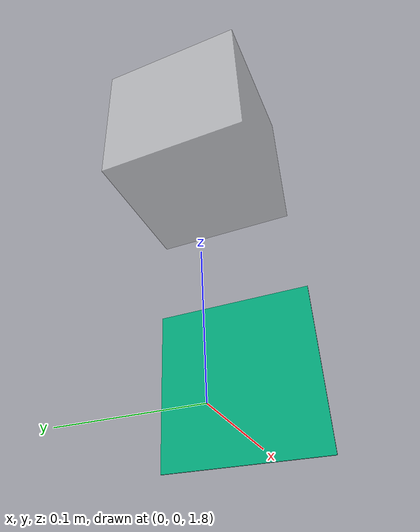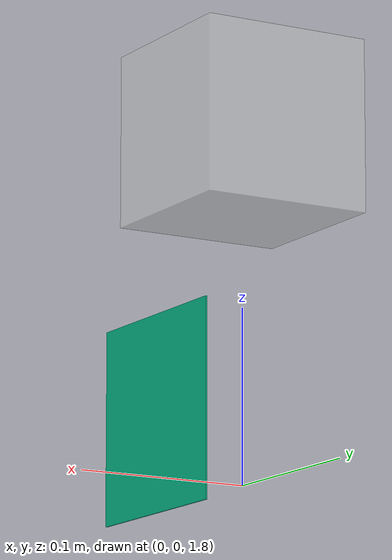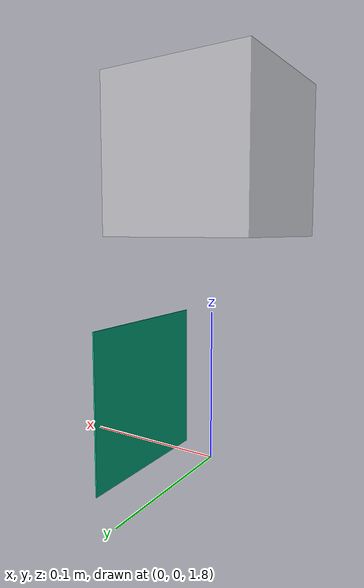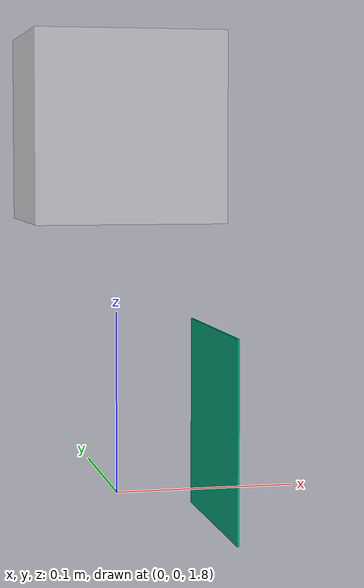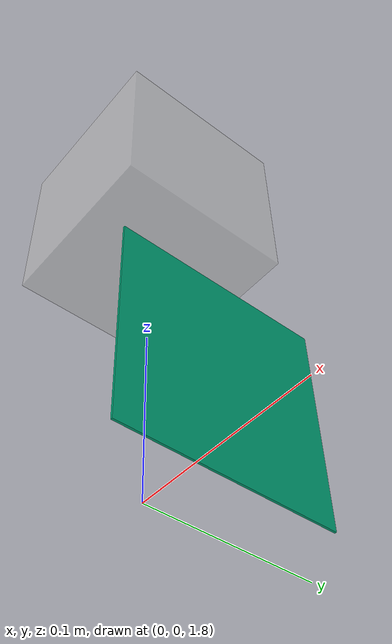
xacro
<?xml version="1.0"?>
<robot xmlns:xacro="http://ros.org/wiki/xacro" name="floating_apriltag_cube">

  <!-- 创建一个基础链接作为立方体的中心 -->
  <link name="world"/>

  <link name="apriltag_cube_base2">
    <visual>
      <geometry>
        <box size="0.1 0.1 0.1"/>
      </geometry>
      <material>
        <color rgba="0.8 0.8 0.8 0.5"/>
      </material>
    </visual>
    <collision>
      <geometry>
        <box size="0.1 0.1 0.1"/>
      </geometry>
    </collision>
    <inertial>
      <mass value="0.1"/>
      <inertia ixx="0.0001" ixy="0" ixz="0" iyy="0.0001" iyz="0" izz="0.0001"/>
    </inertial>
  </link>

  <!-- 使用 floating joint 使立方体可以自由移动 -->
  <joint name="world_to_cube_joint" type="floating">
    <parent link="world"/>
    <child link="apriltag_cube_base2"/>
    <origin xyz="0.0 0.0 2.0" rpy="0 0 0"/>
  </joint>

  <xacro:include filename="$(find kuavo_assets)/models/apriltag/urdf/apriltag_cube2.xacro"/>
  <xacro:left_arm_apriltags parent_link="apriltag_cube_base2"/>

  <!-- Gazebo物理属性配置 -->
  <gazebo reference="apriltag_cube_base2">
    <gravity>false</gravity>
    <mu1>0.8</mu1>
    <mu2>0.8</mu2>
    <kp>1000000.0</kp>
    <kd>100.0</kd>
    <minDepth>0.001</minDepth>
    <maxVel>1.0</maxVel>
    <maxContacts>20</maxContacts>
  </gazebo>
</robot>

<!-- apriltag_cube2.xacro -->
<robot xmlns:xacro="http://ros.org/wiki/xacro">

  <!-- 引入apriltag -->
  <xacro:include filename="$(find kuavo_assets)/models/apriltag/urdf/apriltag.xacro"/>

  <!-- 左臂AprilTag标记 -->
  <xacro:macro name="left_arm_apriltags" params="parent_link">
    <xacro:apriltag_marker parent_link="${parent_link}" id="2">
      <origin xyz="0.055 0 -0.165" rpy="0 1.5708 0"/>
    </xacro:apriltag_marker>
  </xacro:macro>

  <!-- 右臂AprilTag标记 -->
</robot>

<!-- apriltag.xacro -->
<robot xmlns:xacro="http://ros.org/wiki/xacro" name="apriltag_marker">

  <xacro:macro name="apriltag_marker" params="parent_link *origin id enable_collision:=false">
    <!-- 定义二维码的Link -->
    <link name="apriltag_marker_${id}">
      <visual>
        <origin xyz="0 0 0" rpy="0 0 0"/>
        <geometry>
          <box size="0.11 0.11 0.001"/>
        </geometry>
      </visual>
      <xacro:if value="${enable_collision}">
        <collision>
          <geometry>
            <box size="0.11 0.11 0.001"/>
          </geometry>
        </collision>
      </xacro:if>
    </link>

    <joint name="apriltag_joint_${id}" type="fixed">
      <xacro:insert_block name="origin" />
      <parent link="${parent_link}"/>
      <child link="apriltag_marker_${id}"/>
    </joint>

    <gazebo reference="apriltag_marker_${id}">
      <visual>
        <material>
          <script>
            <uri>file://$(find kuavo_assets)/models/apriltag/materials/apriltag_${id}.material</uri>
            <name>AprilTag/Marker${id}</name>
          </script>
          <shader type="pixel">
            <normal_map>__default__</normal_map>
          </shader>
          <double_sided>false</double_sided>
        </material>
      </visual>
    </gazebo>
  </xacro:macro>
</robot>
